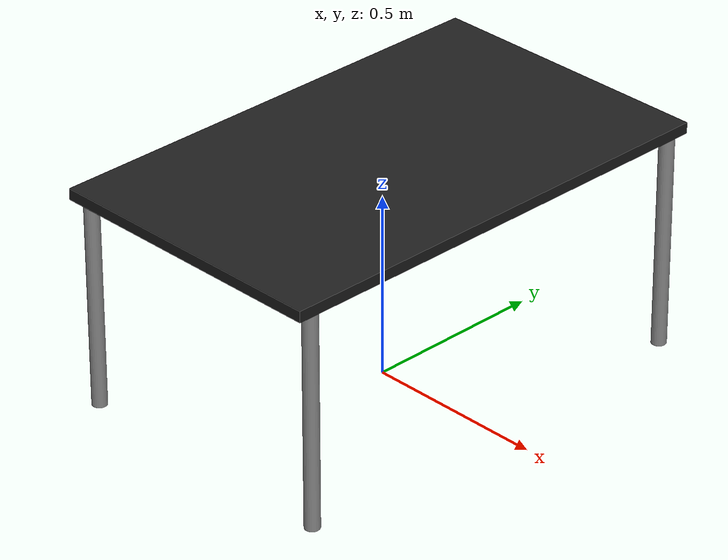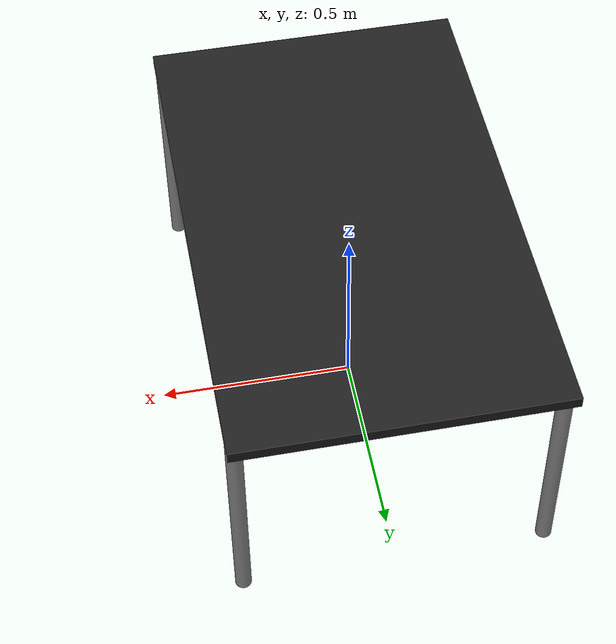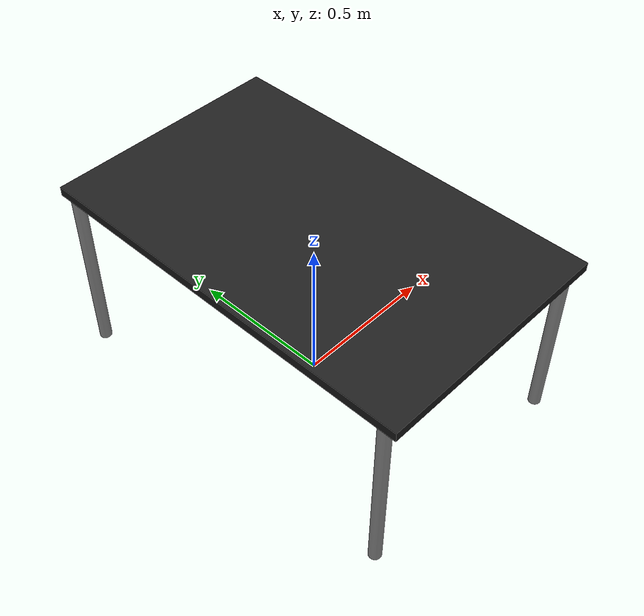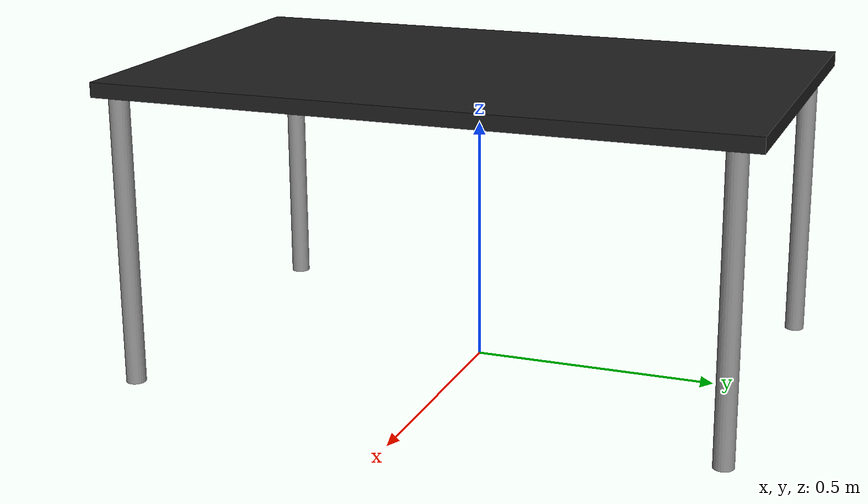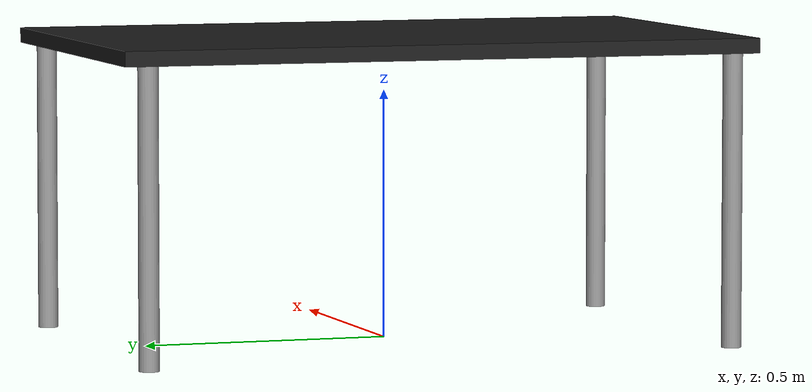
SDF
<?xml version="1.0" ?>
<sdf version="1.5">
  <model name="table">
    <static>true</static>
    <link name="table">
      <collision name="surface">
        <pose>0 0 0.6 0 0 0</pose>
        <geometry>
          <box>
            <size>0.8 1.3 0.03</size>
          </box>
        </geometry>
         <surface>
          <contact>
            <ode>
              <kp>1e15</kp>
              <kd>1e13</kd>
            </ode>
          </contact>
          <friction>
            <ode>
              <mu>0.6</mu>
              <mu2>0.6</mu2>
            </ode>
          </friction>
        </surface>
      </collision>
      <visual name="visual1">
        <pose>0 0 0.6 0 0 0</pose>
        <geometry>
          <box>
            <size>0.8 1.3 0.03</size>
          </box>
        </geometry>
        <material>
          <script>
            <uri>file://media/materials/scripts/gazebo.material</uri>
            <name>Gazebo/Black</name>
          </script>
        </material>
      </visual>
      <collision name="front_left_leg">
        <pose>0.38 0.6 0.3 0 0 0</pose>
        <geometry>
          <cylinder>
            <radius>0.02</radius>
            <length>1.0</length>
          </cylinder>
        </geometry>
         <surface>
          <contact>
            <ode>
              <kp>1e15</kp>
              <kd>1e13</kd>
            </ode>
          </contact>
          <friction>
            <ode>
              <mu>0.6</mu>
              <mu2>0.6</mu2>
            </ode>
          </friction>
        </surface>
      </collision>
      <visual name="front_left_leg">
        <pose>0.38 0.6 0.3 0 0 0</pose>
        <geometry>
          <cylinder>
            <radius>0.02</radius>
            <length>0.6</length>
          </cylinder>
        </geometry>
        <material>
          <script>
            <uri>file://media/materials/scripts/gazebo.material</uri>
            <name>Gazebo/Grey</name>
          </script>
        </material>
      </visual>
      <collision name="front_right_leg">
        <pose>0.38 -0.6 0.3 0 0 0</pose>
        <geometry>
          <cylinder>
            <radius>0.02</radius>
            <length>1.0</length>
          </cylinder>
        </geometry>
         <surface>
          <contact>
            <ode>
              <kp>1e15</kp>
              <kd>1e13</kd>
            </ode>
          </contact>
          <friction>
            <ode>
              <mu>0.6</mu>
              <mu2>0.6</mu2>
            </ode>
          </friction>
        </surface>
      </collision>
      <visual name="front_right_leg">
        <pose>0.38 -0.6 0.3 0 0 0</pose>
        <geometry>
          <cylinder>
            <radius>0.02</radius>
            <length>0.6</length>
          </cylinder>
        </geometry>
        <material>
          <script>
            <uri>file://media/materials/scripts/gazebo.material</uri>
            <name>Gazebo/Grey</name>
          </script>
        </material>
      </visual>
      <collision name="back_right_leg">
        <pose>-0.38 -0.6 0.3 0 0 0</pose>
        <geometry>
          <cylinder>
            <radius>0.02</radius>
            <length>0.6</length>
          </cylinder>
        </geometry>
         <surface>
          <contact>
            <ode>
              <kp>1e15</kp>
              <kd>1e13</kd>
            </ode>
          </contact>
          <friction>
            <ode>
              <mu>0.6</mu>
              <mu2>0.6</mu2>
            </ode>
          </friction>
        </surface>
      </collision>
      <visual name="back_right_leg">
        <pose>-0.38 -0.6 0.3 0 0 0</pose>
        <geometry>
          <cylinder>
            <radius>0.02</radius>
            <length>0.6</length>
          </cylinder>
        </geometry>
        <material>
          <script>
            <uri>file://media/materials/scripts/gazebo.material</uri>
            <name>Gazebo/Grey</name>
          </script>
        </material>
      </visual>
      <collision name="back_left_leg">
        <pose>-0.38 0.6 0.3 0 0 0</pose>
        <geometry>
          <cylinder>
            <radius>0.02</radius>
            <length>0.6</length>
          </cylinder>
        </geometry>
         <surface>
          <contact>
            <ode>
              <kp>1e15</kp>
              <kd>1e13</kd>
            </ode>
          </contact>
          <friction>
            <ode>
              <mu>0.6</mu>
              <mu2>0.6</mu2>
            </ode>
          </friction>
        </surface>
      </collision>
      <visual name="back_left_leg">
        <pose>-0.38 0.6 0.3 0 0 0</pose>
        <geometry>
          <cylinder>
            <radius>0.02</radius>
            <length>0.6</length>
          </cylinder>
        </geometry>
        <material>
          <script>
            <uri>file://media/materials/scripts/gazebo.material</uri>
            <name>Gazebo/Grey</name>
          </script>
        </material>
      </visual>
    </link>
  </model>
</sdf>
